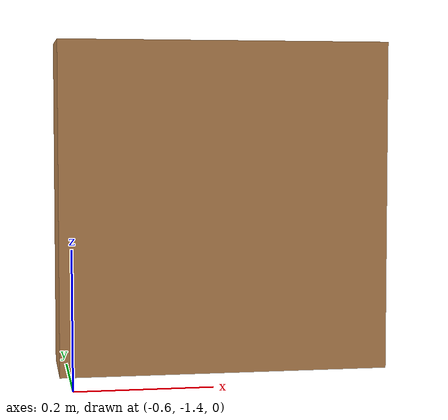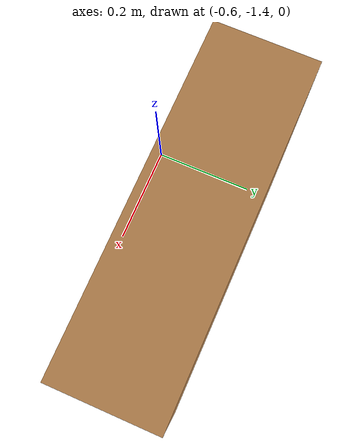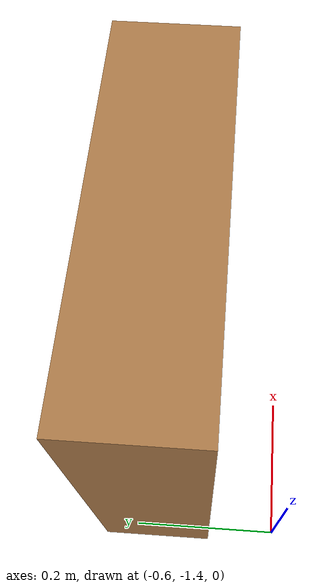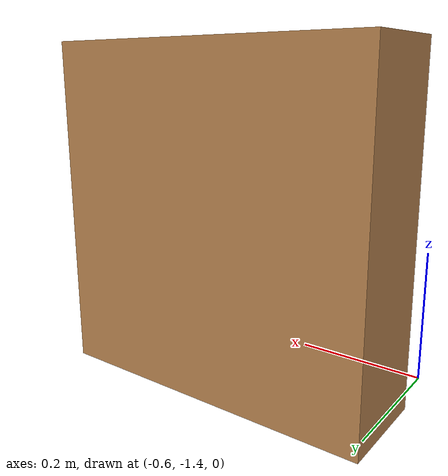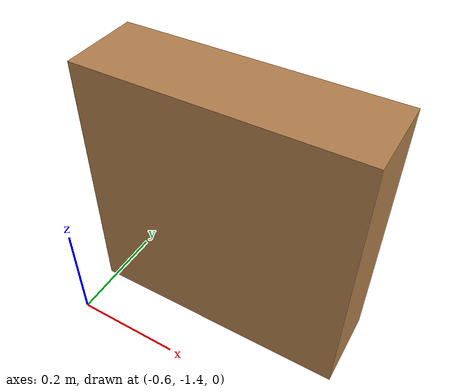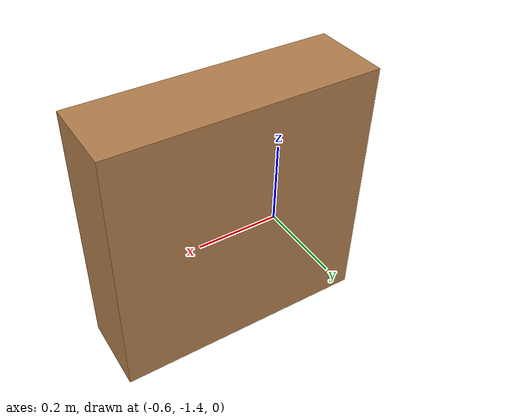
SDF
<?xml version='1.0'?>
<sdf version='1.6'>
  <model name='wall05m'>
    <pose frame=''>-0.365 -1.23 0 0 -0 0</pose>
    <link name='Wall_0'>
      <collision name='Wall_0_Collision'>
        <geometry>
          <box>
            <size>0.5 0.15 0.5</size>
          </box>
        </geometry>
        <pose frame=''>0 0 0.25 0 -0 0</pose>
      </collision>
      <visual name='Wall_0_Visual'>
        <pose frame=''>0 0 0.25 0 -0 0</pose>
        <geometry>
          <box>
            <size>0.5 0.15 0.5</size>
          </box>
        </geometry>
        <material>
          <script>
            <uri>file://media/materials/scripts/gazebo.material</uri>
            <name>Gazebo/Wood</name>
          </script>
          <ambient>1 1 1 1</ambient>
        </material>
        <meta>
          <layer>0</layer>
        </meta>
      </visual>
      <pose frame=''>0 0 0 0 -0 0</pose>
    </link>
    <static>1</static>
  </model>
</sdf>
